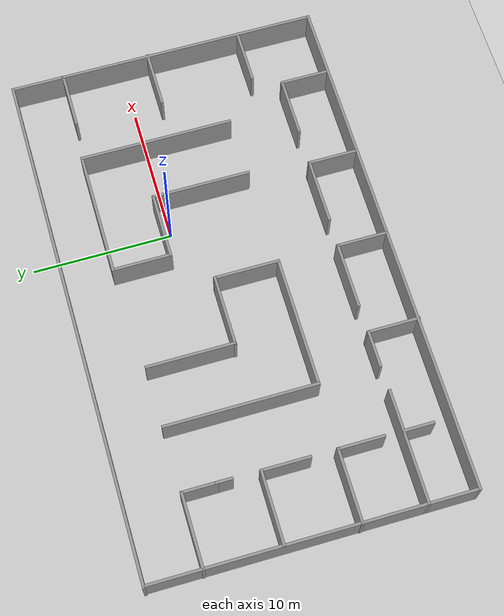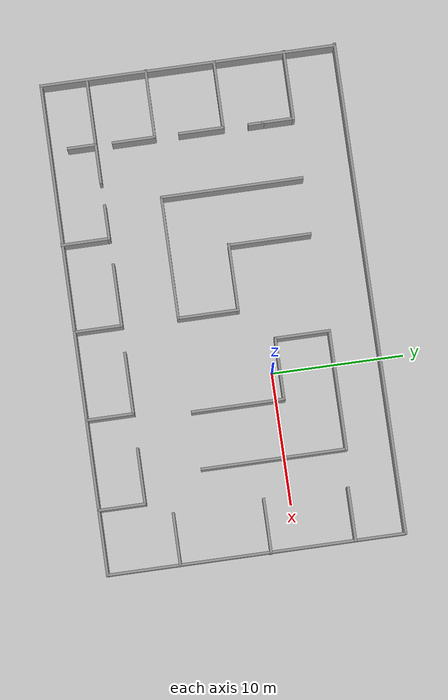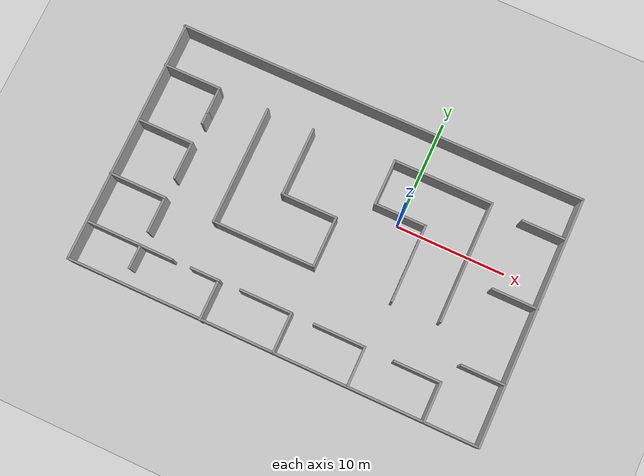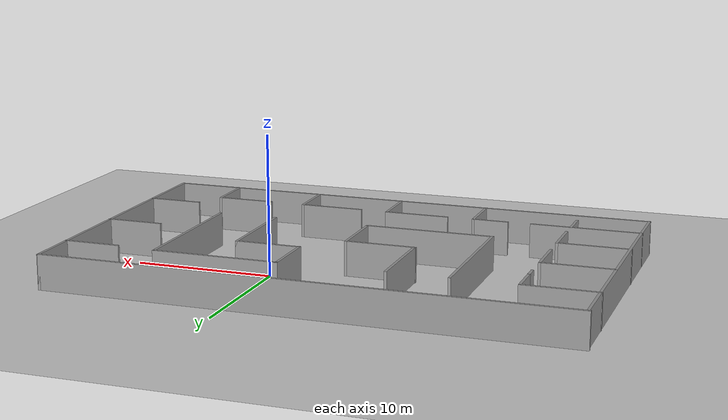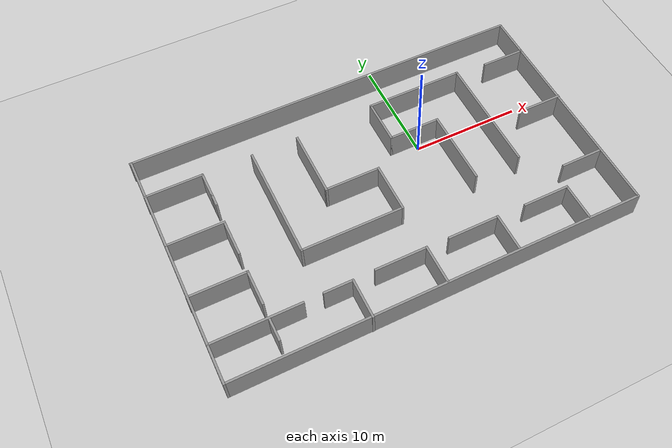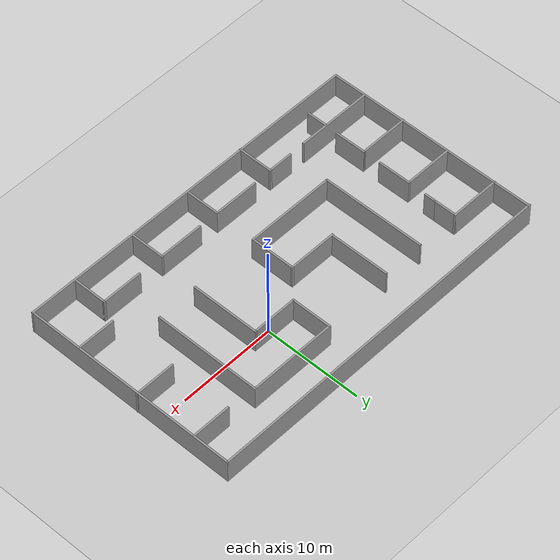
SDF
<sdf version="1.4">
 <world name="default">
  <light name="sun" type="directional">
   <pose>0.000000 0.000000 10.000000 0.000000 0.000000 0.000000</pose>
   <diffuse>0.800000 0.800000 0.800000 1.000000</diffuse>
   <specular>0.100000 0.100000 0.100000 1.000000</specular>
   <attenuation>
    <range>1000.000000</range>
    <constant>0.900000</constant>
    <linear>0.010000</linear>
    <quadratic>0.001000</quadratic>
   </attenuation>
   <direction>-0.500000 0.500000 -1.000000</direction>
  </light>
  <model name="ground_plane">
   <static>1</static>
   <link name="link">
    <collision name="collision">
     <geometry>
      <plane><normal>0.000000 0.000000 1.000000</normal><size>100.000000 100.000000</size></plane>
     </geometry>
     <surface><friction><ode><mu>100.000000</mu><mu2>50.000000</mu2></ode></friction></surface>
    </collision>
    <visual name="visual">
     <cast_shadows>0</cast_shadows>
     <geometry>
      <plane><normal>0.000000 0.000000 1.000000</normal><size>100.000000 100.000000</size></plane>
     </geometry>
     <material>
      <script><uri>file://media/materials/scripts/gazebo.material</uri><name>Gazebo/Grey</name></script>
     </material>
    </visual>
    <velocity_decay><linear>0.000000</linear><angular>0.000000</angular></velocity_decay>
   </link>
  </model>
  <physics type="ode">
   <max_step_size>0.001000</max_step_size>
   <real_time_factor>1.000000</real_time_factor>
   <real_time_update_rate>1000.000000</real_time_update_rate>
   <gravity>0.000000 0.000000 -9.800000</gravity>
  </physics>
  <scene>
   <ambient>0.200000 0.200000 0.200000 1.000000</ambient>
   <background>0.700000 0.700000 0.700000 1.000000</background>
   <shadows>1</shadows>
  </scene>
  <model name="big">
   <link name="Wall_26">
    <collision name="Wall_26_Collision">
     <geometry><box><size>37.459600 0.200000 2.500000</size></box></geometry>
     <pose>0.000000 0.000000 1.250000 0.000000 0.000000 0.000000</pose>
    </collision>
    <visual name="Wall_26_Visual">
     <pose>0.000000 0.000000 1.250000 0.000000 0.000000 0.000000</pose>
     <geometry><box><size>37.459600 0.200000 2.500000</size></box></geometry>
     <material>
      <script><uri>file://media/materials/scripts/gazebo.material</uri><name>Gazebo/Grey</name></script>
     </material>
    </visual>
    <velocity_decay><linear>0.000000</linear><angular>0.000000</angular></velocity_decay>
    <pose>-5.293800 8.137200 0.000000 0.000000 0.000000 0.000000</pose>
   </link>
   <link name="Wall_27">
    <collision name="Wall_27_Collision">
     <geometry><box><size>22.612400 0.200000 2.500000</size></box></geometry>
     <pose>0.000000 0.000000 1.250000 0.000000 0.000000 0.000000</pose>
    </collision>
    <visual name="Wall_27_Visual">
     <pose>0.000000 0.000000 1.250000 0.000000 0.000000 0.000000</pose>
     <geometry><box><size>22.612400 0.200000 2.500000</size></box></geometry>
     <material>
      <script><uri>file://media/materials/scripts/gazebo.material</uri><name>Gazebo/Grey</name></script>
     </material>
    </visual>
    <velocity_decay><linear>0.000000</linear><angular>0.000000</angular></velocity_decay>
    <pose>13.336000 -3.069000 0.000000 0.000000 0.000000 -1.570800</pose>
   </link>
   <link name="Wall_28">
    <collision name="Wall_28_Collision">
     <geometry><box><size>37.378700 0.200000 2.500000</size></box></geometry>
     <pose>0.000000 0.000000 1.250000 0.000000 0.000000 0.000000</pose>
    </collision>
    <visual name="Wall_28_Visual">
     <pose>0.000000 0.000000 1.250000 0.000000 0.000000 0.000000</pose>
     <geometry><box><size>37.378700 0.200000 2.500000</size></box></geometry>
     <material>
      <script><uri>file://media/materials/scripts/gazebo.material</uri><name>Gazebo/Grey</name></script>
     </material>
    </visual>
    <velocity_decay><linear>0.000000</linear><angular>0.000000</angular></velocity_decay>
    <pose>-5.253350 -14.275200 0.000000 0.000000 0.000000 3.141590</pose>
   </link>
   <link name="Wall_29">
    <collision name="Wall_29_Collision">
     <geometry><box><size>22.571900 0.200000 2.500000</size></box></geometry>
     <pose>0.000000 0.000000 1.250000 0.000000 0.000000 0.000000</pose>
    </collision>
    <visual name="Wall_29_Visual">
     <pose>0.000000 0.000000 1.250000 0.000000 0.000000 0.000000</pose>
     <geometry><box><size>22.571900 0.200000 2.500000</size></box></geometry>
     <material>
      <script><uri>file://media/materials/scripts/gazebo.material</uri><name>Gazebo/Grey</name></script>
     </material>
    </visual>
    <velocity_decay><linear>0.000000</linear><angular>0.000000</angular></velocity_decay>
    <pose>-23.842700 -3.089230 0.000000 0.000000 0.000000 1.570800</pose>
   </link>
   <link name="Wall_32">
    <collision name="Wall_32_Collision">
     <geometry><box><size>5.337860 0.200000 2.500000</size></box></geometry>
     <pose>0.000000 0.000000 1.250000 0.000000 0.000000 0.000000</pose>
    </collision>
    <visual name="Wall_32_Visual">
     <pose>0.000000 0.000000 1.250000 0.000000 0.000000 0.000000</pose>
     <geometry><box><size>5.337860 0.200000 2.500000</size></box></geometry>
     <material>
      <script><uri>file://media/materials/scripts/gazebo.material</uri><name>Gazebo/Grey</name></script>
     </material>
    </visual>
    <velocity_decay><linear>0.000000</linear><angular>0.000000</angular></velocity_decay>
    <pose>-21.314200 4.253460 0.000000 0.000000 0.000000 0.000000</pose>
   </link>
   <link name="Wall_33">
    <collision name="Wall_33_Collision">
     <geometry><box><size>2.546420 0.200000 2.500000</size></box></geometry>
     <pose>0.000000 0.000000 1.250000 0.000000 0.000000 0.000000</pose>
    </collision>
    <visual name="Wall_33_Visual">
     <pose>0.000000 0.000000 1.250000 0.000000 0.000000 0.000000</pose>
     <geometry><box><size>2.546420 0.200000 2.500000</size></box></geometry>
     <material>
      <script><uri>file://media/materials/scripts/gazebo.material</uri><name>Gazebo/Grey</name></script>
     </material>
    </visual>
    <velocity_decay><linear>0.000000</linear><angular>0.000000</angular></velocity_decay>
    <pose>-18.745300 3.080250 0.000000 0.000000 0.000000 -1.570800</pose>
   </link>
   <link name="Wall_34">
    <collision name="Wall_34_Collision">
     <geometry><box><size>1.211390 0.200000 2.500000</size></box></geometry>
     <pose>0.000000 0.000000 1.250000 0.000000 0.000000 0.000000</pose>
    </collision>
    <visual name="Wall_34_Visual">
     <pose>0.000000 0.000000 1.250000 0.000000 0.000000 0.000000</pose>
     <geometry><box><size>1.211390 0.200000 2.500000</size></box></geometry>
     <material>
      <script><uri>file://media/materials/scripts/gazebo.material</uri><name>Gazebo/Grey</name></script>
     </material>
    </visual>
    <velocity_decay><linear>0.000000</linear><angular>0.000000</angular></velocity_decay>
    <pose>-18.745300 1.401340 0.000000 0.000000 0.000000 -1.570800</pose>
   </link>
   <link name="Wall_36">
    <collision name="Wall_36_Collision">
     <geometry><box><size>5.256950 0.200000 2.500000</size></box></geometry>
     <pose>0.000000 0.000000 1.250000 0.000000 0.000000 0.000000</pose>
    </collision>
    <visual name="Wall_36_Visual">
     <pose>0.000000 0.000000 1.250000 0.000000 0.000000 0.000000</pose>
     <geometry><box><size>5.256950 0.200000 2.500000</size></box></geometry>
     <material>
      <script><uri>file://media/materials/scripts/gazebo.material</uri><name>Gazebo/Grey</name></script>
     </material>
    </visual>
    <velocity_decay><linear>0.000000</linear><angular>0.000000</angular></velocity_decay>
    <pose>-21.314200 -1.086680 0.000000 0.000000 0.000000 0.000000</pose>
   </link>
   <link name="Wall_37">
    <collision name="Wall_37_Collision">
     <geometry><box><size>3.517360 0.200000 2.500000</size></box></geometry>
     <pose>0.000000 0.000000 1.250000 0.000000 0.000000 0.000000</pose>
    </collision>
    <visual name="Wall_37_Visual">
     <pose>0.000000 0.000000 1.250000 0.000000 0.000000 0.000000</pose>
     <geometry><box><size>3.517360 0.200000 2.500000</size></box></geometry>
     <material>
      <script><uri>file://media/materials/scripts/gazebo.material</uri><name>Gazebo/Grey</name></script>
     </material>
    </visual>
    <velocity_decay><linear>0.000000</linear><angular>0.000000</angular></velocity_decay>
    <pose>-18.785700 -2.745350 0.000000 0.000000 0.000000 -1.570800</pose>
   </link>
   <link name="Wall_39">
    <collision name="Wall_39_Collision">
     <geometry><box><size>5.297400 0.200000 2.500000</size></box></geometry>
     <pose>0.000000 0.000000 1.250000 0.000000 0.000000 0.000000</pose>
    </collision>
    <visual name="Wall_39_Visual">
     <pose>0.000000 0.000000 1.250000 0.000000 0.000000 0.000000</pose>
     <geometry><box><size>5.297400 0.200000 2.500000</size></box></geometry>
     <material>
      <script><uri>file://media/materials/scripts/gazebo.material</uri><name>Gazebo/Grey</name></script>
     </material>
    </visual>
    <velocity_decay><linear>0.000000</linear><angular>0.000000</angular></velocity_decay>
    <pose>-21.334400 -6.305440 0.000000 0.000000 0.000000 0.000000</pose>
   </link>
   <link name="Wall_40">
    <collision name="Wall_40_Collision">
     <geometry><box><size>3.355540 0.200000 2.500000</size></box></geometry>
     <pose>0.000000 0.000000 1.250000 0.000000 0.000000 0.000000</pose>
    </collision>
    <visual name="Wall_40_Visual">
     <pose>0.000000 0.000000 1.250000 0.000000 0.000000 0.000000</pose>
     <geometry><box><size>3.355540 0.200000 2.500000</size></box></geometry>
     <material>
      <script><uri>file://media/materials/scripts/gazebo.material</uri><name>Gazebo/Grey</name></script>
     </material>
    </visual>
    <velocity_decay><linear>0.000000</linear><angular>0.000000</angular></velocity_decay>
    <pose>-18.785700 -7.883210 0.000000 0.000000 0.000000 -1.570800</pose>
   </link>
   <link name="Wall_45">
    <collision name="Wall_45_Collision">
     <geometry><box><size>8.088840 0.200000 2.500000</size></box></geometry>
     <pose>0.000000 0.000000 1.250000 0.000000 0.000000 0.000000</pose>
    </collision>
    <visual name="Wall_45_Visual">
     <pose>0.000000 0.000000 1.250000 0.000000 0.000000 0.000000</pose>
     <geometry><box><size>8.088840 0.200000 2.500000</size></box></geometry>
     <material>
      <script><uri>file://media/materials/scripts/gazebo.material</uri><name>Gazebo/Grey</name></script>
     </material>
    </visual>
    <velocity_decay><linear>0.000000</linear><angular>0.000000</angular></velocity_decay>
    <pose>-19.898300 -10.796000 0.000000 0.000000 0.000000 0.000000</pose>
   </link>
   <link name="Wall_47">
    <collision name="Wall_47_Collision">
     <geometry><box><size>2.222780 0.200000 2.500000</size></box></geometry>
     <pose>0.000000 0.000000 1.250000 0.000000 0.000000 0.000000</pose>
    </collision>
    <visual name="Wall_47_Visual">
     <pose>0.000000 0.000000 1.250000 0.000000 0.000000 0.000000</pose>
     <geometry><box><size>2.222780 0.200000 2.500000</size></box></geometry>
     <material>
      <script><uri>file://media/materials/scripts/gazebo.material</uri><name>Gazebo/Grey</name></script>
     </material>
    </visual>
    <velocity_decay><linear>0.000000</linear><angular>0.000000</angular></velocity_decay>
    <pose>-18.826200 -11.847900 0.000000 0.000000 0.000000 -1.570800</pose>
   </link>
   <link name="Wall_49">
    <collision name="Wall_49_Collision">
     <geometry><box><size>2.708250 0.200000 2.500000</size></box></geometry>
     <pose>0.000000 0.000000 1.250000 0.000000 0.000000 0.000000</pose>
    </collision>
    <visual name="Wall_49_Visual">
     <pose>0.000000 0.000000 1.250000 0.000000 0.000000 0.000000</pose>
     <geometry><box><size>2.708250 0.200000 2.500000</size></box></geometry>
     <material>
      <script><uri>file://media/materials/scripts/gazebo.material</uri><name>Gazebo/Grey</name></script>
     </material>
    </visual>
    <velocity_decay><linear>0.000000</linear><angular>0.000000</angular></velocity_decay>
    <pose>-12.879200 -10.755600 0.000000 0.000000 0.000000 0.000000</pose>
   </link>
   <link name="Wall_50">
    <collision name="Wall_50_Collision">
     <geometry><box><size>3.760090 0.200000 2.500000</size></box></geometry>
     <pose>0.000000 0.000000 1.250000 0.000000 0.000000 0.000000</pose>
    </collision>
    <visual name="Wall_50_Visual">
     <pose>0.000000 0.000000 1.250000 0.000000 0.000000 0.000000</pose>
     <geometry><box><size>3.760090 0.200000 2.500000</size></box></geometry>
     <material>
      <script><uri>file://media/materials/scripts/gazebo.material</uri><name>Gazebo/Grey</name></script>
     </material>
    </visual>
    <velocity_decay><linear>0.000000</linear><angular>0.000000</angular></velocity_decay>
    <pose>-11.625100 -12.535600 0.000000 0.000000 0.000000 -1.570800</pose>
   </link>
   <link name="Wall_52">
    <collision name="Wall_52_Collision">
     <geometry><box><size>4.811940 0.200000 2.500000</size></box></geometry>
     <pose>0.000000 0.000000 1.250000 0.000000 0.000000 0.000000</pose>
    </collision>
    <visual name="Wall_52_Visual">
     <pose>0.000000 0.000000 1.250000 0.000000 0.000000 0.000000</pose>
     <geometry><box><size>4.811940 0.200000 2.500000</size></box></geometry>
     <material>
      <script><uri>file://media/materials/scripts/gazebo.material</uri><name>Gazebo/Grey</name></script>
     </material>
    </visual>
    <velocity_decay><linear>0.000000</linear><angular>0.000000</angular></velocity_decay>
    <pose>-7.296360 -10.715100 0.000000 0.000000 0.000000 0.000000</pose>
   </link>
   <link name="Wall_53">
    <collision name="Wall_53_Collision">
     <geometry><box><size>3.679180 0.200000 2.500000</size></box></geometry>
     <pose>0.000000 0.000000 1.250000 0.000000 0.000000 0.000000</pose>
    </collision>
    <visual name="Wall_53_Visual">
     <pose>0.000000 0.000000 1.250000 0.000000 0.000000 0.000000</pose>
     <geometry><box><size>3.679180 0.200000 2.500000</size></box></geometry>
     <material>
      <script><uri>file://media/materials/scripts/gazebo.material</uri><name>Gazebo/Grey</name></script>
     </material>
    </visual>
    <velocity_decay><linear>0.000000</linear><angular>0.000000</angular></velocity_decay>
    <pose>-4.990390 -12.454700 0.000000 0.000000 0.000000 -1.570800</pose>
   </link>
   <link name="Wall_55">
    <collision name="Wall_55_Collision">
     <geometry><box><size>4.771480 0.200000 2.500000</size></box></geometry>
     <pose>0.000000 0.000000 1.250000 0.000000 0.000000 0.000000</pose>
    </collision>
    <visual name="Wall_55_Visual">
     <pose>0.000000 0.000000 1.250000 0.000000 0.000000 0.000000</pose>
     <geometry><box><size>4.771480 0.200000 2.500000</size></box></geometry>
     <material>
      <script><uri>file://media/materials/scripts/gazebo.material</uri><name>Gazebo/Grey</name></script>
     </material>
    </visual>
    <velocity_decay><linear>0.000000</linear><angular>0.000000</angular></velocity_decay>
    <pose>-0.600957 -10.755600 0.000000 0.000000 0.000000 0.000000</pose>
   </link>
   <link name="Wall_56">
    <collision name="Wall_56_Collision">
     <geometry><box><size>3.598270 0.200000 2.500000</size></box></geometry>
     <pose>0.000000 0.000000 1.250000 0.000000 0.000000 0.000000</pose>
    </collision>
    <visual name="Wall_56_Visual">
     <pose>0.000000 0.000000 1.250000 0.000000 0.000000 0.000000</pose>
     <geometry><box><size>3.598270 0.200000 2.500000</size></box></geometry>
     <material>
      <script><uri>file://media/materials/scripts/gazebo.material</uri><name>Gazebo/Grey</name></script>
     </material>
    </visual>
    <velocity_decay><linear>0.000000</linear><angular>0.000000</angular></velocity_decay>
    <pose>1.684780 -12.454700 0.000000 0.000000 0.000000 -1.570800</pose>
   </link>
   <link name="Wall_58">
    <collision name="Wall_58_Collision">
     <geometry><box><size>4.326470 0.200000 2.500000</size></box></geometry>
     <pose>0.000000 0.000000 1.250000 0.000000 0.000000 0.000000</pose>
    </collision>
    <visual name="Wall_58_Visual">
     <pose>0.000000 0.000000 1.250000 0.000000 0.000000 0.000000</pose>
     <geometry><box><size>4.326470 0.200000 2.500000</size></box></geometry>
     <material>
      <script><uri>file://media/materials/scripts/gazebo.material</uri><name>Gazebo/Grey</name></script>
     </material>
    </visual>
    <velocity_decay><linear>0.000000</linear><angular>0.000000</angular></velocity_decay>
    <pose>6.418090 -10.796000 0.000000 0.000000 0.000000 0.000000</pose>
   </link>
   <link name="Wall_59">
    <collision name="Wall_59_Collision">
     <geometry><box><size>3.598270 0.200000 2.500000</size></box></geometry>
     <pose>0.000000 0.000000 1.250000 0.000000 0.000000 0.000000</pose>
    </collision>
    <visual name="Wall_59_Visual">
     <pose>0.000000 0.000000 1.250000 0.000000 0.000000 0.000000</pose>
     <geometry><box><size>3.598270 0.200000 2.500000</size></box></geometry>
     <material>
      <script><uri>file://media/materials/scripts/gazebo.material</uri><name>Gazebo/Grey</name></script>
     </material>
    </visual>
    <velocity_decay><linear>0.000000</linear><angular>0.000000</angular></velocity_decay>
    <pose>8.481320 -12.495100 0.000000 0.000000 0.000000 -1.570800</pose>
   </link>
   <link name="Wall_61">
    <collision name="Wall_61_Collision">
     <geometry><box><size>3.962590 0.200000 2.500000</size></box></geometry>
     <pose>0.000000 0.000000 1.250000 0.000000 0.000000 0.000000</pose>
    </collision>
    <visual name="Wall_61_Visual">
     <pose>0.000000 0.000000 1.250000 0.000000 0.000000 0.000000</pose>
     <geometry><box><size>3.962590 0.200000 2.500000</size></box></geometry>
     <material>
      <script><uri>file://media/materials/scripts/gazebo.material</uri><name>Gazebo/Grey</name></script>
     </material>
    </visual>
    <velocity_decay><linear>0.000000</linear><angular>0.000000</angular></velocity_decay>
    <pose>11.373800 -8.813690 0.000000 0.000000 0.000000 0.000000</pose>
   </link>
   <link name="Wall_63">
    <collision name="Wall_63_Collision">
     <geometry><box><size>10.880300 0.200000 2.500000</size></box></geometry>
     <pose>0.000000 0.000000 1.250000 0.000000 0.000000 0.000000</pose>
    </collision>
    <visual name="Wall_63_Visual">
     <pose>0.000000 0.000000 1.250000 0.000000 0.000000 0.000000</pose>
     <geometry><box><size>10.880300 0.200000 2.500000</size></box></geometry>
     <material>
      <script><uri>file://media/materials/scripts/gazebo.material</uri><name>Gazebo/Grey</name></script>
     </material>
    </visual>
    <velocity_decay><linear>0.000000</linear><angular>0.000000</angular></velocity_decay>
    <pose>-14.173800 -1.086680 0.000000 0.000000 0.000000 -1.570800</pose>
   </link>
   <link name="Wall_64">
    <collision name="Wall_64_Collision">
     <geometry><box><size>9.423870 0.200000 2.500000</size></box></geometry>
     <pose>0.000000 0.000000 1.250000 0.000000 0.000000 0.000000</pose>
    </collision>
    <visual name="Wall_64_Visual">
     <pose>0.000000 0.000000 1.250000 0.000000 0.000000 0.000000</pose>
     <geometry><box><size>9.423870 0.200000 2.500000</size></box></geometry>
     <material>
      <script><uri>file://media/materials/scripts/gazebo.material</uri><name>Gazebo/Grey</name></script>
     </material>
    </visual>
    <velocity_decay><linear>0.000000</linear><angular>0.000000</angular></velocity_decay>
    <pose>-9.561870 -6.426810 0.000000 0.000000 0.000000 0.000000</pose>
   </link>
   <link name="Wall_65">
    <collision name="Wall_65_Collision">
     <geometry><box><size>4.731020 0.200000 2.500000</size></box></geometry>
     <pose>0.000000 0.000000 1.250000 0.000000 0.000000 0.000000</pose>
    </collision>
    <visual name="Wall_65_Visual">
     <pose>0.000000 0.000000 1.250000 0.000000 0.000000 0.000000</pose>
     <geometry><box><size>4.731020 0.200000 2.500000</size></box></geometry>
     <material>
      <script><uri>file://media/materials/scripts/gazebo.material</uri><name>Gazebo/Grey</name></script>
     </material>
    </visual>
    <velocity_decay><linear>0.000000</linear><angular>0.000000</angular></velocity_decay>
    <pose>-4.949930 -4.161300 0.000000 0.000000 0.000000 1.570800</pose>
   </link>
   <link name="Wall_66">
    <collision name="Wall_66_Collision">
     <geometry><box><size>5.176040 0.200000 2.500000</size></box></geometry>
     <pose>0.000000 0.000000 1.250000 0.000000 0.000000 0.000000</pose>
    </collision>
    <visual name="Wall_66_Visual">
     <pose>0.000000 0.000000 1.250000 0.000000 0.000000 0.000000</pose>
     <geometry><box><size>5.176040 0.200000 2.500000</size></box></geometry>
     <material>
      <script><uri>file://media/materials/scripts/gazebo.material</uri><name>Gazebo/Grey</name></script>
     </material>
    </visual>
    <velocity_decay><linear>0.000000</linear><angular>0.000000</angular></velocity_decay>
    <pose>-7.437950 -1.895790 0.000000 0.000000 0.000000 3.141590</pose>
   </link>
   <link name="Wall_68">
    <collision name="Wall_68_Collision">
     <geometry><box><size>6.349250 0.200000 2.500000</size></box></geometry>
     <pose>0.000000 0.000000 1.250000 0.000000 0.000000 0.000000</pose>
    </collision>
    <visual name="Wall_68_Visual">
     <pose>0.000000 0.000000 1.250000 0.000000 0.000000 0.000000</pose>
     <geometry><box><size>6.349250 0.200000 2.500000</size></box></geometry>
     <material>
      <script><uri>file://media/materials/scripts/gazebo.material</uri><name>Gazebo/Grey</name></script>
     </material>
    </visual>
    <velocity_decay><linear>0.000000</linear><angular>0.000000</angular></velocity_decay>
    <pose>-9.885510 1.178840 0.000000 0.000000 0.000000 1.570800</pose>
   </link>
   <link name="Wall_70">
    <collision name="Wall_70_Collision">
     <geometry><box><size>4.286010 0.200000 2.500000</size></box></geometry>
     <pose>0.000000 0.000000 1.250000 0.000000 0.000000 0.000000</pose>
    </collision>
    <visual name="Wall_70_Visual">
     <pose>0.000000 0.000000 1.250000 0.000000 0.000000 0.000000</pose>
     <geometry><box><size>4.286010 0.200000 2.500000</size></box></geometry>
     <material>
      <script><uri>file://media/materials/scripts/gazebo.material</uri><name>Gazebo/Grey</name></script>
     </material>
    </visual>
    <velocity_decay><linear>0.000000</linear><angular>0.000000</angular></velocity_decay>
    <pose>-2.441690 2.615010 0.000000 0.000000 0.000000 -1.570800</pose>
   </link>
   <link name="Wall_71">
    <collision name="Wall_71_Collision">
     <geometry><box><size>4.811940 0.200000 2.500000</size></box></geometry>
     <pose>0.000000 0.000000 1.250000 0.000000 0.000000 0.000000</pose>
    </collision>
    <visual name="Wall_71_Visual">
     <pose>0.000000 0.000000 1.250000 0.000000 0.000000 0.000000</pose>
     <geometry><box><size>4.811940 0.200000 2.500000</size></box></geometry>
     <material>
      <script><uri>file://media/materials/scripts/gazebo.material</uri><name>Gazebo/Grey</name></script>
     </material>
    </visual>
    <velocity_decay><linear>0.000000</linear><angular>0.000000</angular></velocity_decay>
    <pose>-0.135718 0.572004 0.000000 0.000000 0.000000 0.000000</pose>
   </link>
   <link name="Wall_72">
    <collision name="Wall_72_Collision">
     <geometry><box><size>7.117900 0.200000 2.500000</size></box></geometry>
     <pose>0.000000 0.000000 1.250000 0.000000 0.000000 0.000000</pose>
    </collision>
    <visual name="Wall_72_Visual">
     <pose>0.000000 0.000000 1.250000 0.000000 0.000000 0.000000</pose>
     <geometry><box><size>7.117900 0.200000 2.500000</size></box></geometry>
     <material>
      <script><uri>file://media/materials/scripts/gazebo.material</uri><name>Gazebo/Grey</name></script>
     </material>
    </visual>
    <velocity_decay><linear>0.000000</linear><angular>0.000000</angular></velocity_decay>
    <pose>2.170250 -2.886950 0.000000 0.000000 0.000000 -1.570800</pose>
   </link>
   <link name="Wall_74">
    <collision name="Wall_74_Collision">
     <geometry><box><size>9.140680 0.200000 2.500000</size></box></geometry>
     <pose>0.000000 0.000000 1.250000 0.000000 0.000000 0.000000</pose>
    </collision>
    <visual name="Wall_74_Visual">
     <pose>0.000000 0.000000 1.250000 0.000000 0.000000 0.000000</pose>
     <geometry><box><size>9.140680 0.200000 2.500000</size></box></geometry>
     <material>
      <script><uri>file://media/materials/scripts/gazebo.material</uri><name>Gazebo/Grey</name></script>
     </material>
    </visual>
    <velocity_decay><linear>0.000000</linear><angular>0.000000</angular></velocity_decay>
    <pose>2.028660 4.658020 0.000000 0.000000 0.000000 0.000000</pose>
   </link>
   <link name="Wall_75">
    <collision name="Wall_75_Collision">
     <geometry><box><size>11.082500 0.200000 2.500000</size></box></geometry>
     <pose>0.000000 0.000000 1.250000 0.000000 0.000000 0.000000</pose>
    </collision>
    <visual name="Wall_75_Visual">
     <pose>0.000000 0.000000 1.250000 0.000000 0.000000 0.000000</pose>
     <geometry><box><size>11.082500 0.200000 2.500000</size></box></geometry>
     <material>
      <script><uri>file://media/materials/scripts/gazebo.material</uri><name>Gazebo/Grey</name></script>
     </material>
    </visual>
    <velocity_decay><linear>0.000000</linear><angular>0.000000</angular></velocity_decay>
    <pose>6.499000 -0.783258 0.000000 0.000000 0.000000 -1.570800</pose>
   </link>
   <link name="Wall_77">
    <collision name="Wall_77_Collision">
     <geometry><box><size>4.205100 0.200000 2.500000</size></box></geometry>
     <pose>0.000000 0.000000 1.250000 0.000000 0.000000 0.000000</pose>
    </collision>
    <visual name="Wall_77_Visual">
     <pose>0.000000 0.000000 1.250000 0.000000 0.000000 0.000000</pose>
     <geometry><box><size>4.205100 0.200000 2.500000</size></box></geometry>
     <material>
      <script><uri>file://media/materials/scripts/gazebo.material</uri><name>Gazebo/Grey</name></script>
     </material>
    </visual>
    <velocity_decay><linear>0.000000</linear><angular>0.000000</angular></velocity_decay>
    <pose>11.373900 -1.976700 0.000000 0.000000 0.000000 3.141590</pose>
   </link>
   <link name="Wall_79">
    <collision name="Wall_79_Collision">
     <geometry><box><size>4.124190 0.200000 2.500000</size></box></geometry>
     <pose>0.000000 0.000000 1.250000 0.000000 0.000000 0.000000</pose>
    </collision>
    <visual name="Wall_79_Visual">
     <pose>0.000000 0.000000 1.250000 0.000000 0.000000 0.000000</pose>
     <geometry><box><size>4.124190 0.200000 2.500000</size></box></geometry>
     <material>
      <script><uri>file://media/materials/scripts/gazebo.material</uri><name>Gazebo/Grey</name></script>
     </material>
    </visual>
    <velocity_decay><linear>0.000000</linear><angular>0.000000</angular></velocity_decay>
    <pose>11.373900 4.374830 0.000000 0.000000 0.000000 3.141590</pose>
   </link>
   <static>1</static>
  </model>
 </world>
</sdf>
